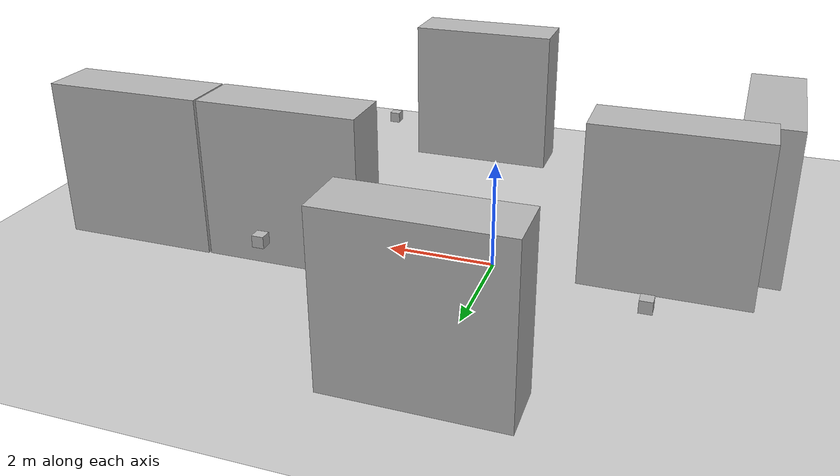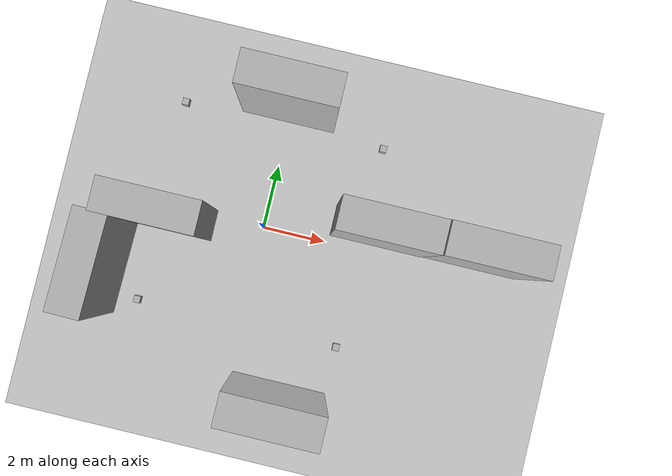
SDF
<sdf version="1.7">
 <world name="default">
  <light name="sun" type="directional">
   <pose>0 0 10 0 -0 0</pose>
   <diffuse>0.8 0.8 0.8 1</diffuse>
   <specular>0.2 0.2 0.2 1</specular>
   <attenuation>
    <range>1000</range>
    <constant>0.9</constant>
    <linear>0.01</linear>
    <quadratic>0.001</quadratic>
   </attenuation>
   <direction>-0.5 0.1 -0.9</direction>
   <spot><inner_angle>0</inner_angle><outer_angle>0</outer_angle><falloff>0</falloff></spot>
  </light>
  <model name="ground_plane">
   <static>1</static>
   <link name="link">
    <collision name="collision">
     <geometry><plane><normal>0 0 1</normal><size>100 100</size></plane></geometry>
     <surface>
      <contact><collide_bitmask>65535</collide_bitmask></contact>
      <friction><ode><mu>100</mu><mu2>50</mu2></ode></friction>
     </surface>
    </collision>
    <visual name="visual">
     <cast_shadows>0</cast_shadows>
     <geometry><plane><normal>0 0 1</normal><size>100 100</size></plane></geometry>
     <material>
      <script><uri>file://media/materials/scripts/gazebo.material</uri><name>Gazebo/Grey</name></script>
     </material>
    </visual>
   </link>
  </model>
  <gravity>0 0 -9.8</gravity>
  <magnetic_field>6e-06 2.3e-05 -4.2e-05</magnetic_field>
  <atmosphere type="adiabatic"/>
  <physics type="ode">
   <max_step_size>0.001</max_step_size>
   <real_time_factor>1</real_time_factor>
   <real_time_update_rate>1000</real_time_update_rate>
  </physics>
  <scene><ambient>0.4 0.4 0.4 1</ambient><background>0.7 0.7 0.7 1</background><shadows>1</shadows></scene>
  <spherical_coordinates>
   <surface_model>EARTH_WGS84</surface_model>
   <latitude_deg>0</latitude_deg>
   <longitude_deg>0</longitude_deg>
   <elevation>0</elevation>
   <heading_deg>0</heading_deg>
  </spherical_coordinates>
  <model name="brick_box_3x1x3">
   <static>1</static>
   <link name="chassis">
    <pose>0 0 1.5 0 -0 0</pose>
    <collision name="collision"><geometry><box><size>3 1 3</size></box></geometry></collision>
    <visual name="visual">
     <geometry><mesh><uri>model://brick_box_3x1x3/meshes/simple_box.dae</uri><scale>3 1 3</scale></mesh></geometry>
     <material>
      <script>
       <uri>model://brick_box_3x1x3/materials/scripts</uri>
       <uri>model://brick_box_3x1x3/materials/textures</uri>
       <name>BrickBox/Diffuse</name>
      </script>
     </material>
    </visual>
   </link>
   <pose>-0.040405 3.98424 0 0 -0 0</pose>
  </model>
  <model name="brick_box_3x1x3_0">
   <static>1</static>
   <link name="chassis">
    <pose>0 0 1.5 0 -0 0</pose>
    <collision name="collision"><geometry><box><size>3 1 3</size></box></geometry></collision>
    <visual name="visual">
     <geometry><mesh><uri>model://brick_box_3x1x3/meshes/simple_box.dae</uri><scale>3 1 3</scale></mesh></geometry>
     <material>
      <script>
       <uri>model://brick_box_3x1x3/materials/scripts</uri>
       <uri>model://brick_box_3x1x3/materials/textures</uri>
       <name>BrickBox/Diffuse</name>
      </script>
     </material>
    </visual>
   </link>
   <pose>1.61716 -5.19546 0 0 -0 0</pose>
  </model>
  <model name="brick_box_3x1x3_1">
   <static>1</static>
   <link name="chassis">
    <pose>0 0 1.5 0 -0 0</pose>
    <collision name="collision"><geometry><box><size>3 1 3</size></box></geometry></collision>
    <visual name="visual">
     <geometry><mesh><uri>model://brick_box_3x1x3/meshes/simple_box.dae</uri><scale>3 1 3</scale></mesh></geometry>
     <material>
      <script>
       <uri>model://brick_box_3x1x3/materials/scripts</uri>
       <uri>model://brick_box_3x1x3/materials/textures</uri>
       <name>BrickBox/Diffuse</name>
      </script>
     </material>
    </visual>
   </link>
   <pose>6.64734 0.759861 0 0 -0 0</pose>
  </model>
  <model name="brick_box_3x1x3_2">
   <static>1</static>
   <link name="chassis">
    <pose>0 0 1.5 0 -0 0</pose>
    <collision name="collision"><geometry><box><size>3 1 3</size></box></geometry></collision>
    <visual name="visual">
     <geometry><mesh><uri>model://brick_box_3x1x3/meshes/simple_box.dae</uri><scale>3 1 3</scale></mesh></geometry>
     <material>
      <script>
       <uri>model://brick_box_3x1x3/materials/scripts</uri>
       <uri>model://brick_box_3x1x3/materials/textures</uri>
       <name>BrickBox/Diffuse</name>
      </script>
     </material>
    </visual>
   </link>
   <pose>3.60862 0.74597 0 0 -0 0</pose>
  </model>
  <model name="brick_box_3x1x3_3">
   <static>1</static>
   <link name="chassis">
    <pose>0 0 1.5 0 -0 0</pose>
    <collision name="collision"><geometry><box><size>3 1 3</size></box></geometry></collision>
    <visual name="visual">
     <geometry><mesh><uri>model://brick_box_3x1x3/meshes/simple_box.dae</uri><scale>3 1 3</scale></mesh></geometry>
     <material>
      <script>
       <uri>model://brick_box_3x1x3/materials/scripts</uri>
       <uri>model://brick_box_3x1x3/materials/textures</uri>
       <name>BrickBox/Diffuse</name>
      </script>
     </material>
    </visual>
   </link>
   <pose>-3.05339 -0.326919 0 0 -0 0</pose>
  </model>
  <model name="brick_box_3x1x3_4">
   <static>1</static>
   <link name="chassis">
    <pose>0 0 1.5 0 -0 0</pose>
    <collision name="collision"><geometry><box><size>3 1 3</size></box></geometry></collision>
    <visual name="visual">
     <geometry><mesh><uri>model://brick_box_3x1x3/meshes/simple_box.dae</uri><scale>3 1 3</scale></mesh></geometry>
     <material>
      <script>
       <uri>model://brick_box_3x1x3/materials/scripts</uri>
       <uri>model://brick_box_3x1x3/materials/textures</uri>
       <name>BrickBox/Diffuse</name>
      </script>
     </material>
    </visual>
   </link>
   <pose>-4.50866 -2.26535 -0.06783 0 0 -1.59138</pose>
  </model>
  <model name="uwb_anchor0">
   <pose>3 3 1.5 0 -0 0</pose>
   <static>1</static>
   <link name="link">
    <visual name="visual"><geometry><box><size>0.2 0.2 0.2</size></box></geometry></visual>
   </link>
  </model>
  <model name="uwb_anchor1">
   <pose>3 -3 1.5 0 -0 0</pose>
   <static>1</static>
   <link name="link">
    <visual name="visual"><geometry><box><size>0.2 0.2 0.2</size></box></geometry></visual>
   </link>
  </model>
  <model name="uwb_anchor2">
   <pose>-3 3 1.5 0 -0 0</pose>
   <static>1</static>
   <link name="link">
    <visual name="visual"><geometry><box><size>0.2 0.2 0.2</size></box></geometry></visual>
   </link>
  </model>
  <model name="uwb_anchor3">
   <pose>-3 -3 1.5 0 -0 0</pose>
   <static>1</static>
   <link name="link">
    <visual name="visual"><geometry><box><size>0.2 0.2 0.2</size></box></geometry></visual>
   </link>
  </model>
 </world>
</sdf>
